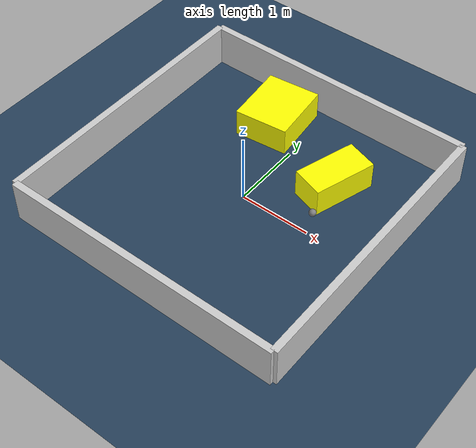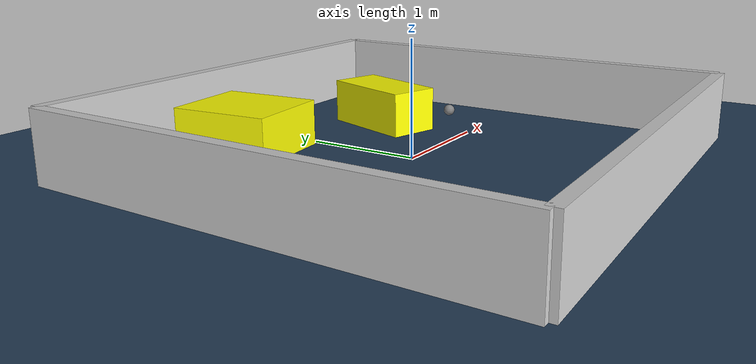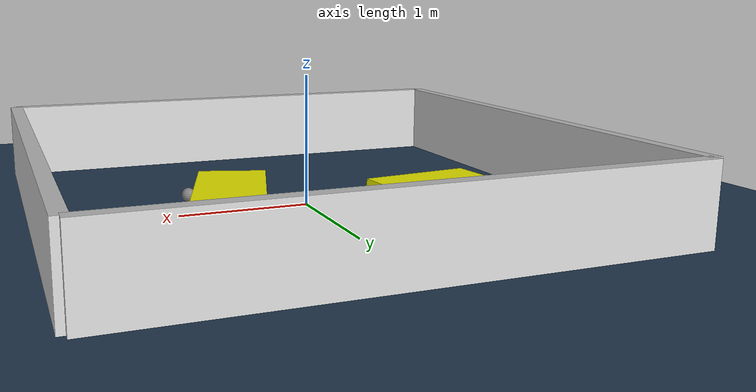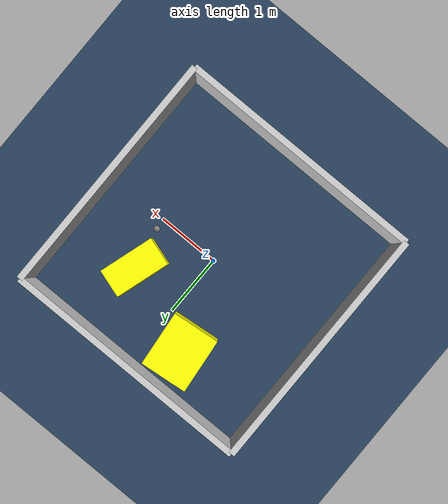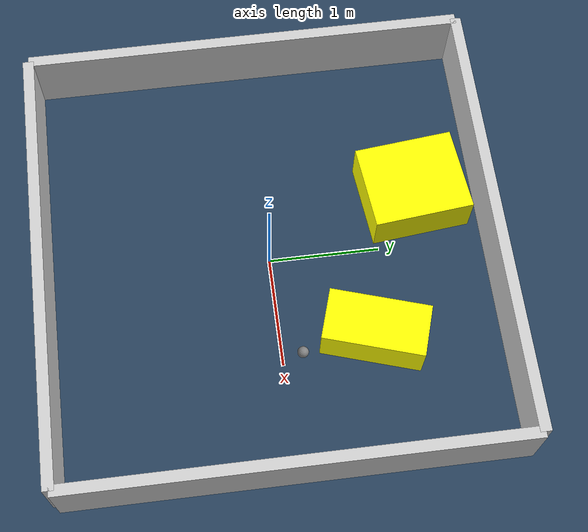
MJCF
<?xml version="1.0" ?>
<mujoco model="generated_environment">
  <option timestep="0.01" integrator="RK4" cone="elliptic"/>
  <default>
    <geom density="1"/>
  </default>
  <asset>
    <texture builtin="gradient" height="3072" rgb1="0.3 0.5 0.7" rgb2="0 0 0" type="skybox" width="512"/>
    <texture builtin="checker" height="300" mark="edge" markrgb="0.8 0.8 0.8" name="groundplane" rgb1="0.2 0.3 0.4" rgb2="0.1 0.2 0.3" type="2d" width="300"/>
    <material name="groundplane" reflectance="0.2" texrepeat="5 5" texture="groundplane" texuniform="true"/>
    <material name="robot" rgba="0.0 1.0 0.0 1"/>
  </asset>
  <worldbody>
    <light dir="0 0 -1" directional="true" pos="0 0 1.5"/>
    <geom condim="4" friction="1.0 0.005 0.001" material="groundplane" name="floor" size="0 0 0.05" type="plane"/>
    <body name="walls">
      <geom name="wall_1" condim="4" pos="-2.0 0.0 0.3" rgba="0.800000011920929 0.800000011920929 0.800000011920929 1.0" size="0.05 2.0 0.3" type="box"/>
      <geom name="wall_2" condim="4" pos="2.0 0.0 0.3" rgba="0.800000011920929 0.800000011920929 0.800000011920929 1.0" size="0.05 2.0 0.3" type="box"/>
      <geom name="wall_3" condim="4" pos="0.0 -2.0 0.3" rgba="0.800000011920929 0.800000011920929 0.800000011920929 1.0" size="2.0 0.05 0.3" type="box"/>
      <geom name="wall_4" condim="4" pos="0.0 2.0 0.3" rgba="0.800000011920929 0.800000011920929 0.800000011920929 1.0" size="2.0 0.05 0.3" type="box"/>
    </body>
    <body name="robot">
      <joint name="joint_x" type="slide" pos="0 0 0" axis="1 0 0"/>
      <joint name="joint_y" type="slide" pos="0 0 0" axis="0 1 0"/>
      <geom name="robot" type="sphere" pos="0.9650278960076712 0.1758703021766601 0.2" size="0.05" mass="5." friction="1.0 0.005 0.0001" condim="4"/>
      <site name="sensor_ball"/>
    </body>
    <body name="obstacle_1_movable">
      <geom name="obstacle_1_movable" condim="4" pos="0.8381627530703539 0.8273333403006731 0.2" euler="0 0 342.6105685114533" friction="1.0 0.005 0.001" rgba="1 1 0 1" size="0.23077072421316838 0.44844777562422083 0.2" type="box" mass="0.1"/>
      <joint type="free"/>
    </body>
    <body name="obstacle_2_movable">
      <geom name="obstacle_2_movable" condim="4" pos="-0.48765119296953596 1.3709284805975468 0.2" euler="0 0 186.0172702289938" friction="1.0 0.005 0.001" rgba="1 1 0 1" size="0.38177650857535816 0.44718196825077305 0.2" type="box" mass="0.1"/>
      <joint type="free"/>
    </body>
  </worldbody>
  <actuator>
    <motor name="actuator_x" joint="joint_x" gear="1" ctrlrange="-1 1"/>
    <motor name="actuator_y" joint="joint_y" gear="1" ctrlrange="-1 1"/>
  </actuator>
</mujoco>
